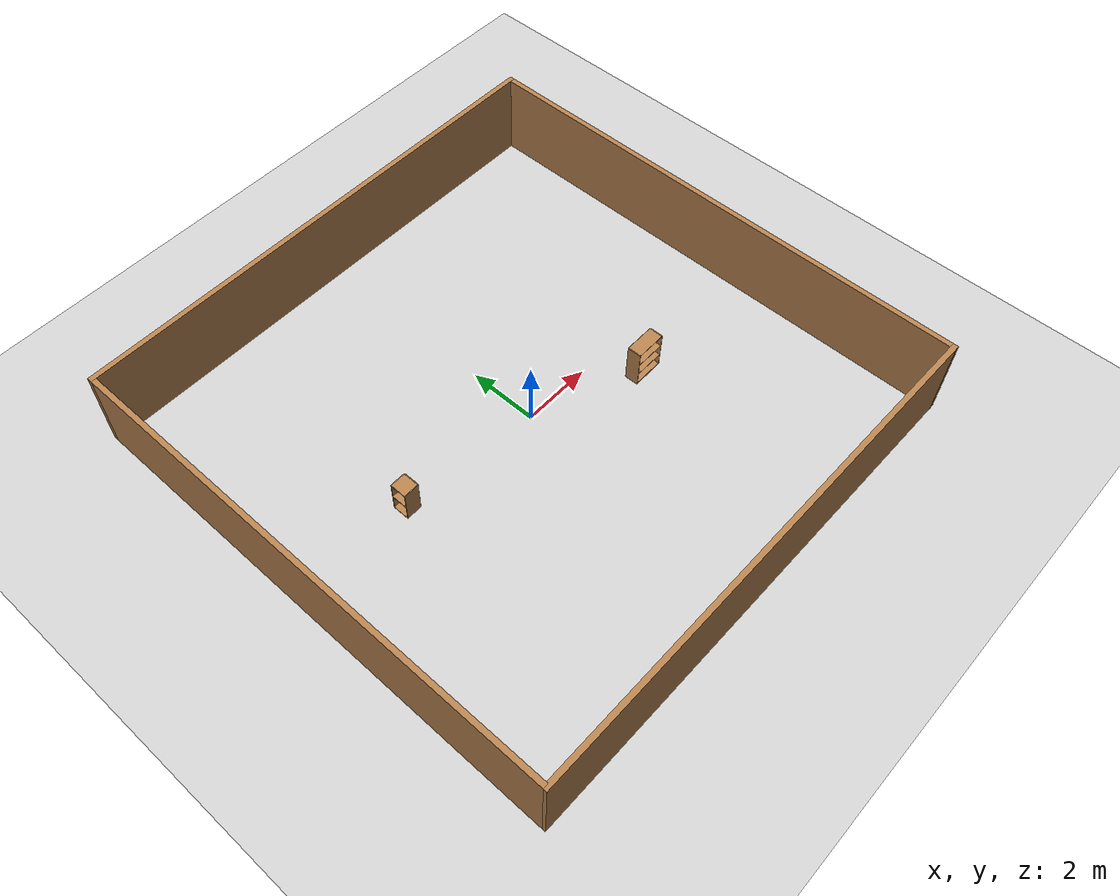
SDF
<sdf version="1.6">
 <world name="default">
  <light name="sun" type="directional">
   <pose>0 0 10 0 -0 0</pose>
   <diffuse>0.8 0.8 0.8 1</diffuse>
   <specular>0.2 0.2 0.2 1</specular>
   <attenuation>
    <range>1000</range>
    <constant>0.9</constant>
    <linear>0.01</linear>
    <quadratic>0.001</quadratic>
   </attenuation>
   <direction>-0.5 0.1 -0.9</direction>
  </light>
  <model name="ground_plane">
   <static>1</static>
   <link name="link">
    <collision name="collision">
     <geometry><plane><normal>0 0 1</normal><size>100 100</size></plane></geometry>
     <surface><friction><ode><mu>100</mu><mu2>50</mu2></ode></friction></surface>
    </collision>
    <visual name="visual">
     <cast_shadows>0</cast_shadows>
     <geometry><plane><normal>0 0 1</normal><size>100 100</size></plane></geometry>
     <material>
      <script><uri>file://media/materials/scripts/gazebo.material</uri><name>Gazebo/Grey</name></script>
     </material>
    </visual>
   </link>
  </model>
  <gravity>0 0 -9.8</gravity>
  <magnetic_field>6e-06 2.3e-05 -4.2e-05</magnetic_field>
  <atmosphere type="adiabatic"/>
  <physics name="default_physics" default="0" type="ode">
   <max_step_size>0.001</max_step_size>
   <real_time_factor>1</real_time_factor>
   <real_time_update_rate>1000</real_time_update_rate>
  </physics>
  <scene><ambient>0.4 0.4 0.4 1</ambient><background>0.7 0.7 0.7 1</background><shadows>1</shadows></scene>
  <audio><device>default</device></audio>
  <spherical_coordinates>
   <surface_model>EARTH_WGS84</surface_model>
   <latitude_deg>0</latitude_deg>
   <longitude_deg>0</longitude_deg>
   <elevation>0</elevation>
   <heading_deg>0</heading_deg>
  </spherical_coordinates>
  <model name="mid">
   <pose>-0.167012 -0.01353 0 0 -0 0</pose>
   <link name="Wall_25">
    <collision name="Wall_25_Collision">
     <geometry><box><size>15 0.15 2.5</size></box></geometry>
     <pose>0 0 1.25 0 -0 0</pose>
    </collision>
    <visual name="Wall_25_Visual">
     <pose>0 0 1.25 0 -0 0</pose>
     <geometry><box><size>15 0.15 2.5</size></box></geometry>
     <material>
      <script><uri>file://media/materials/scripts/gazebo.material</uri><name>Gazebo/Wood</name></script>
      <ambient>1 1 1 1</ambient>
     </material>
     <meta><layer>0</layer></meta>
    </visual>
    <pose>-0 7.42538 0 0 -0 0</pose>
   </link>
   <link name="Wall_26">
    <collision name="Wall_26_Collision">
     <geometry><box><size>15 0.15 2.5</size></box></geometry>
     <pose>0 0 1.25 0 -0 0</pose>
    </collision>
    <visual name="Wall_26_Visual">
     <pose>0 0 1.25 0 -0 0</pose>
     <geometry><box><size>15 0.15 2.5</size></box></geometry>
     <material>
      <script><uri>file://media/materials/scripts/gazebo.material</uri><name>Gazebo/Wood</name></script>
      <ambient>1 1 1 1</ambient>
     </material>
     <meta><layer>0</layer></meta>
    </visual>
    <pose>7.425 0.000376 0 0 -0 -1.5708</pose>
   </link>
   <link name="Wall_27">
    <collision name="Wall_27_Collision">
     <geometry><box><size>15.0008 0.15 2.5</size></box></geometry>
     <pose>0 0 1.25 0 -0 0</pose>
    </collision>
    <visual name="Wall_27_Visual">
     <pose>0 0 1.25 0 -0 0</pose>
     <geometry><box><size>15.0008 0.15 2.5</size></box></geometry>
     <material>
      <script><uri>file://media/materials/scripts/gazebo.material</uri><name>Gazebo/Wood</name></script>
      <ambient>1 1 1 1</ambient>
     </material>
     <meta><layer>0</layer></meta>
    </visual>
    <pose>-0 -7.34962 0 0 -0 3.13149</pose>
   </link>
   <link name="Wall_29">
    <collision name="Wall_29_Collision">
     <geometry><box><size>14.75 0.15 2.5</size></box></geometry>
     <pose>0 0 1.25 0 -0 0</pose>
    </collision>
    <visual name="Wall_29_Visual">
     <pose>0 0 1.25 0 -0 0</pose>
     <geometry><box><size>14.75 0.15 2.5</size></box></geometry>
     <material>
      <script><uri>file://media/materials/scripts/gazebo.material</uri><name>Gazebo/Wood</name></script>
      <ambient>1 1 1 1</ambient>
     </material>
     <meta><layer>0</layer></meta>
    </visual>
    <pose>-7.425 0.125376 0 0 -0 -1.5708</pose>
   </link>
   <static>1</static>
  </model>
  <model name="cabinet">
   <static>1</static>
   <link name="cabinet_bottom_plate">
    <inertial>
     <pose>0 0 -1 0 -0 0</pose>
     <inertia><ixx>2.05</ixx><ixy>0</ixy><ixz>0</ixz><iyy>2.05</iyy><iyz>0</iyz><izz>2.05</izz></inertia>
     <mass>25</mass>
    </inertial>
    <collision name="cabinet_bottom_plate_geom">
     <pose>0 0 0.01 0 -0 0</pose>
     <geometry><box><size>0.45 0.45 0.02</size></box></geometry>
    </collision>
    <visual name="cabinet_bottom_plate_geom_visual">
     <pose>0 0 0.01 0 -0 0</pose>
     <geometry><box><size>0.45 0.45 0.02</size></box></geometry>
     <material>
      <script><uri>file://media/materials/scripts/gazebo.material</uri><name>Gazebo/Wood</name></script>
     </material>
    </visual>
    <collision name="cabinet_bottom_plate_geom_cabinet_back_plate">
     <pose>0.235 0 0.51 0 -0 0</pose>
     <geometry><box><size>0.02 0.45 1.02</size></box></geometry>
    </collision>
    <visual name="cabinet_bottom_plate_geom_cabinet_back_plate_visual">
     <pose>0.235 0 0.51 0 -0 0</pose>
     <geometry><box><size>0.02 0.45 1.02</size></box></geometry>
     <material>
      <script><uri>file://media/materials/scripts/gazebo.material</uri><name>Gazebo/Wood</name></script>
     </material>
    </visual>
    <collision name="cabinet_bottom_plate_geom_cabinet_left_plate">
     <pose>0 0.235 0.51 0 -0 0</pose>
     <geometry><box><size>0.45 0.02 1.02</size></box></geometry>
    </collision>
    <visual name="cabinet_bottom_plate_geom_cabinet_left_plate_visual">
     <pose>0 0.235 0.51 0 -0 0</pose>
     <geometry><box><size>0.45 0.02 1.02</size></box></geometry>
     <material>
      <script><uri>file://media/materials/scripts/gazebo.material</uri><name>Gazebo/Wood</name></script>
     </material>
    </visual>
    <collision name="cabinet_bottom_plate_geom_cabinet_middle_plate">
     <pose>0 0 0.51 0 -0 0</pose>
     <geometry><box><size>0.45 0.45 0.02</size></box></geometry>
    </collision>
    <visual name="cabinet_bottom_plate_geom_cabinet_middle_plate_visual">
     <pose>0 0 0.51 0 -0 0</pose>
     <geometry><box><size>0.45 0.45 0.02</size></box></geometry>
     <material>
      <script><uri>file://media/materials/scripts/gazebo.material</uri><name>Gazebo/Wood</name></script>
     </material>
    </visual>
    <collision name="cabinet_bottom_plate_geom_cabinet_right_plate">
     <pose>0 -0.235 0.51 0 -0 0</pose>
     <geometry><box><size>0.45 0.02 1.02</size></box></geometry>
    </collision>
    <visual name="cabinet_bottom_plate_geom_cabinet_right_plate_visual">
     <pose>0 -0.235 0.51 0 -0 0</pose>
     <geometry><box><size>0.45 0.02 1.02</size></box></geometry>
     <material>
      <script><uri>file://media/materials/scripts/gazebo.material</uri><name>Gazebo/Wood</name></script>
     </material>
    </visual>
    <collision name="cabinet_bottom_plate_geom_cabinet_top_plate">
     <pose>0 0 1.01 0 -0 0</pose>
     <geometry><box><size>0.45 0.45 0.02</size></box></geometry>
    </collision>
    <visual name="cabinet_bottom_plate_geom_cabinet_top_plate_visual">
     <pose>0 0 1.01 0 -0 0</pose>
     <geometry><box><size>0.45 0.45 0.02</size></box></geometry>
     <material>
      <script><uri>file://media/materials/scripts/gazebo.material</uri><name>Gazebo/Wood</name></script>
     </material>
    </visual>
   </link>
   <pose>-4.06656 0.431158 0 0 -0 0</pose>
  </model>
  <model name="bookshelf">
   <static>1</static>
   <link name="link">
    <inertial><mass>1</mass></inertial>
    <collision name="back">
     <pose>0 0.005 0.6 0 -0 0</pose>
     <geometry><box><size>0.9 0.01 1.2</size></box></geometry>
    </collision>
    <visual name="visual1">
     <pose>0 0.005 0.6 0 -0 0</pose>
     <geometry><box><size>0.9 0.01 1.2</size></box></geometry>
     <material>
      <script><uri>file://media/materials/scripts/gazebo.material</uri><name>Gazebo/Wood</name></script>
     </material>
    </visual>
    <collision name="left_side">
     <pose>0.45 -0.195 0.6 0 -0 0</pose>
     <geometry><box><size>0.02 0.4 1.2</size></box></geometry>
    </collision>
    <visual name="visual2">
     <pose>0.45 -0.195 0.6 0 -0 0</pose>
     <geometry><box><size>0.02 0.4 1.2</size></box></geometry>
     <material>
      <script><uri>file://media/materials/scripts/gazebo.material</uri><name>Gazebo/Wood</name></script>
     </material>
    </visual>
    <collision name="right_side">
     <pose>-0.45 -0.195 0.6 0 -0 0</pose>
     <geometry><box><size>0.02 0.4 1.2</size></box></geometry>
    </collision>
    <visual name="visual3">
     <pose>-0.45 -0.195 0.6 0 -0 0</pose>
     <geometry><box><size>0.02 0.4 1.2</size></box></geometry>
     <material>
      <script><uri>file://media/materials/scripts/gazebo.material</uri><name>Gazebo/Wood</name></script>
     </material>
    </visual>
    <collision name="bottom">
     <pose>0 -0.195 0.03 0 -0 0</pose>
     <geometry><box><size>0.88 0.4 0.06</size></box></geometry>
    </collision>
    <visual name="visual4">
     <pose>0 -0.195 0.03 0 -0 0</pose>
     <geometry><box><size>0.88 0.4 0.06</size></box></geometry>
     <material>
      <script><uri>file://media/materials/scripts/gazebo.material</uri><name>Gazebo/Wood</name></script>
     </material>
    </visual>
    <collision name="top">
     <pose>0 -0.195 1.19 0 -0 0</pose>
     <geometry><box><size>0.88 0.4 0.02</size></box></geometry>
    </collision>
    <visual name="visual5">
     <pose>0 -0.195 1.19 0 -0 0</pose>
     <geometry><box><size>0.88 0.4 0.02</size></box></geometry>
     <material>
      <script><uri>file://media/materials/scripts/gazebo.material</uri><name>Gazebo/Wood</name></script>
     </material>
    </visual>
    <collision name="low_shelf">
     <pose>0 -0.195 0.43 0 -0 0</pose>
     <geometry><box><size>0.88 0.4 0.02</size></box></geometry>
    </collision>
    <visual name="visual6">
     <pose>0 -0.195 0.43 0 -0 0</pose>
     <geometry><box><size>0.88 0.4 0.02</size></box></geometry>
     <material>
      <script><uri>file://media/materials/scripts/gazebo.material</uri><name>Gazebo/Wood</name></script>
     </material>
    </visual>
    <collision name="high_shelf">
     <pose>0 -0.195 0.8 0 -0 0</pose>
     <geometry><box><size>0.88 0.4 0.02</size></box></geometry>
    </collision>
    <visual name="visual7">
     <pose>0 -0.195 0.8 0 -0 0</pose>
     <geometry><box><size>0.88 0.4 0.02</size></box></geometry>
     <material>
      <script><uri>file://media/materials/scripts/gazebo.material</uri><name>Gazebo/Wood</name></script>
     </material>
    </visual>
   </link>
   <pose>3.13485 -0.958833 0 0 -0 0</pose>
  </model>
 </world>
</sdf>
